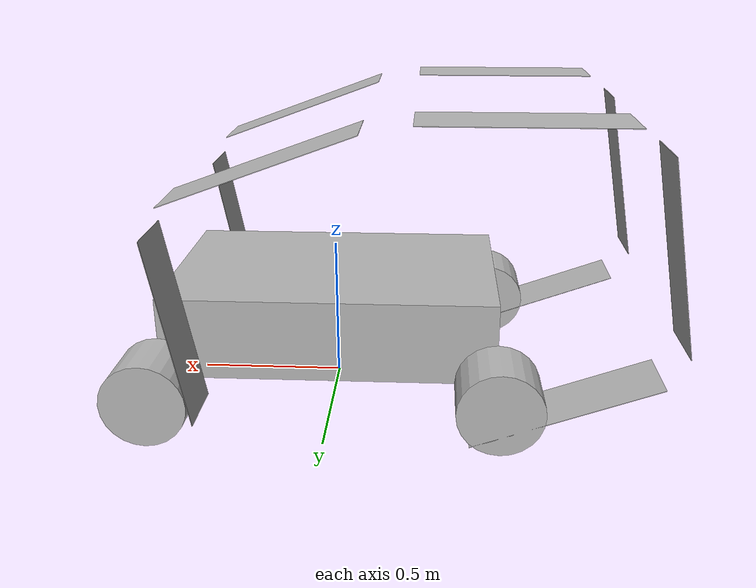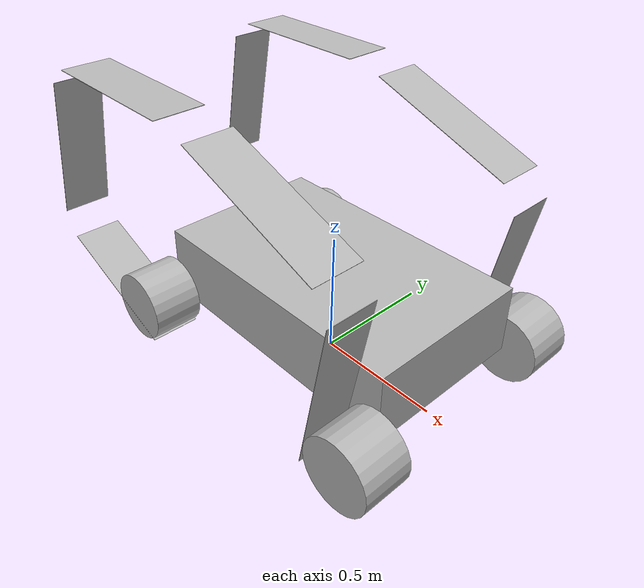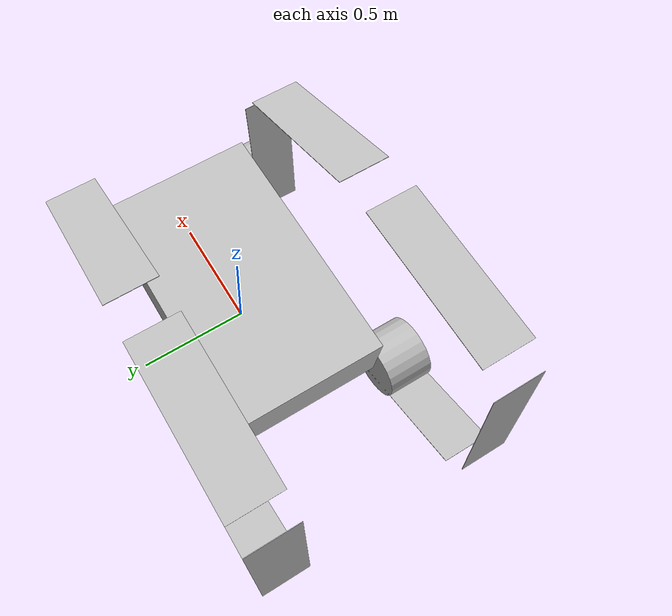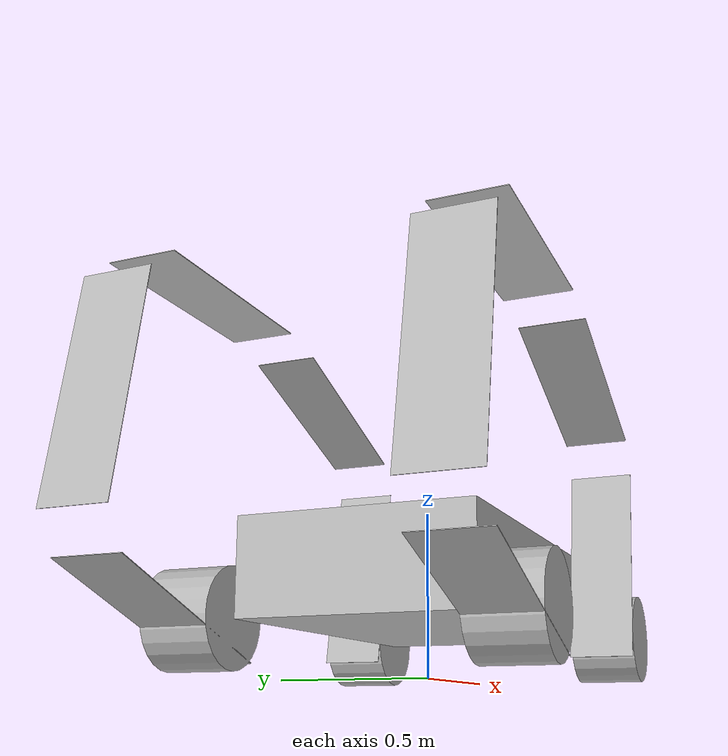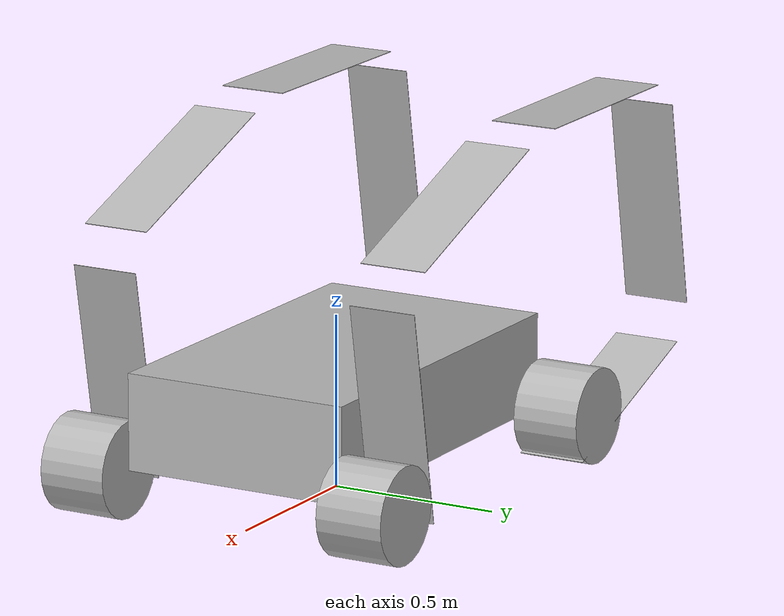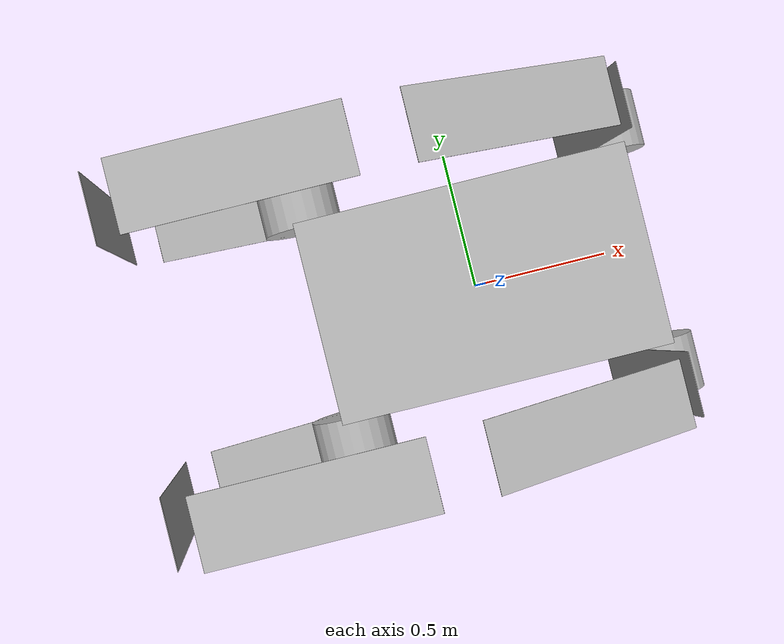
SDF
<sdf version="1.4">
  <model name="track_creator">
    <link name="base_link">
      <self_collide>0</self_collide>
      <pose>0 0 0.28 0 0 0</pose>
      <collision name="base_link_collision">
        <geometry>
          <box>
            <size>1.12 0.68 0.28</size>
          </box>
        </geometry>
      </collision>
      <visual name="base_link_visual">
        <geometry>
          <box>
            <size>1.12 0.68 0.28</size>
          </box>
        </geometry>
      </visual>
    </link>
    <link name="drum1">
      <self_collide>1</self_collide>
      <pose>0.56 0.44 0.142 1.57079632679 0 0</pose>
      <collision name="drum1_collision">
        <geometry>
          <cylinder>
            <radius>0.14</radius>
            <length>0.2</length>
          </cylinder>
        </geometry>
      </collision>
      <visual name="drum1_visual">
        <geometry>
          <cylinder>
            <radius>0.14</radius>
            <length>0.2</length>
          </cylinder>
        </geometry>
      </visual>
    </link>
    <joint name="drum_joint1" type="revolute">
      <pose>0 0 0 0 0 0</pose>
      <parent>base_link</parent>
      <child>drum1</child>
      <axis>
        <xyz>0 1 0</xyz>
      </axis>
    </joint>
    <link name="drum2">
      <self_collide>1</self_collide>
      <pose>0.56 -0.44 0.142 1.57079632679 0 0</pose>
      <collision name="drum2_collision">
        <geometry>
          <cylinder>
            <radius>0.14</radius>
            <length>0.2</length>
          </cylinder>
        </geometry>
      </collision>
      <visual name="drum2_visual">
        <geometry>
          <cylinder>
            <radius>0.14</radius>
            <length>0.2</length>
          </cylinder>
        </geometry>
      </visual>
    </link>
    <joint name="drum_joint2" type="revolute">
      <pose>0 0 0 0 0 0</pose>
      <parent>base_link</parent>
      <child>drum2</child>
      <axis>
        <xyz>0 1 0</xyz>
      </axis>
    </joint>
    <link name="drum3">
      <self_collide>1</self_collide>
      <pose>-0.56 0.44 0.142 1.57079632679 0 0</pose>
      <collision name="drum3_collision">
        <geometry>
          <cylinder>
            <radius>0.14</radius>
            <length>0.2</length>
          </cylinder>
        </geometry>
      </collision>
      <visual name="drum3_visual">
        <geometry>
          <cylinder>
            <radius>0.14</radius>
            <length>0.2</length>
          </cylinder>
        </geometry>
      </visual>
    </link>
    <joint name="drum_joint3" type="revolute">
      <pose>0 0 0 0 0 0</pose>
      <parent>base_link</parent>
      <child>drum3</child>
      <axis>
        <xyz>0 1 0</xyz>
      </axis>
    </joint>
    <link name="drum4">
      <self_collide>1</self_collide>
      <pose>-0.56 -0.44 0.142 1.57079632679 0 0</pose>
      <collision name="drum4_collision">
        <geometry>
          <cylinder>
            <radius>0.14</radius>
            <length>0.2</length>
          </cylinder>
        </geometry>
      </collision>
      <visual name="drum4_visual">
        <geometry>
          <cylinder>
            <radius>0.14</radius>
            <length>0.2</length>
          </cylinder>
        </geometry>
      </visual>
    </link>
    <joint name="drum_joint4" type="revolute">
      <pose>0 0 0 0 0 0</pose>
      <parent>base_link</parent>
      <child>drum4</child>
      <axis>
        <xyz>0 1 0</xyz>
      </axis>
    </joint>
    <link name="right_pad1">
      <self_collide>1</self_collide>
      <pose>0.459653108251 0.44 0.385626993558 0 -1.39353393257 0</pose>
      <collision name="right_pad1_collision">
        <geometry>
          <box>
            <size>0.6252 0.2 0.002</size>
          </box>
        </geometry>
      </collision>
      <visual name="right_pad1_visual">
        <geometry>
          <box>
            <size>0.6252 0.2 0.002</size>
          </box>
        </geometry>
      </visual>
    </link>
    <joint name="right_pad_joint1" type="revolute">
      <pose>-0.39075 0 0 0 0 0</pose>
      <parent>right_pad1</parent>
      <child>right_pad2</child>
      <axis>
        <xyz>0 1 0</xyz>
      </axis>
    </joint>
    <link name="right_pad2">
      <self_collide>1</self_collide>
      <pose>0.162106348692 0.44 0.905900796448 0 -2.78706786513 0</pose>
      <collision name="right_pad2_collision">
        <geometry>
          <box>
            <size>0.6252 0.2 0.002</size>
          </box>
        </geometry>
      </collision>
      <visual name="right_pad2_visual">
        <geometry>
          <box>
            <size>0.6252 0.2 0.002</size>
          </box>
        </geometry>
      </visual>
    </link>
    <joint name="right_pad_joint2" type="revolute">
      <pose>-0.39075 0 0 0 0 0</pose>
      <parent>right_pad2</parent>
      <child>right_pad3</child>
      <axis>
        <xyz>0 1 0</xyz>
      </axis>
    </joint>
    <link name="right_pad3">
      <self_collide>1</self_collide>
      <pose>-0.595093519118 0.44 1.04154760578 0 3.14159265359 0</pose>
      <collision name="right_pad3_collision">
        <geometry>
          <box>
            <size>0.6252 0.2 0.002</size>
          </box>
        </geometry>
      </collision>
      <visual name="right_pad3_visual">
        <geometry>
          <box>
            <size>0.6252 0.2 0.002</size>
          </box>
        </geometry>
      </visual>
    </link>
    <joint name="right_pad_joint3" type="revolute">
      <pose>-0.39075 0 0 0 0 0</pose>
      <parent>right_pad3</parent>
      <child>right_pad4</child>
      <axis>
        <xyz>0 1 0</xyz>
      </axis>
    </joint>
    <link name="right_pad4">
      <self_collide>1</self_collide>
      <pose>-1.05474662737 0.44 0.656920612223 0 1.74805872102 0</pose>
      <collision name="right_pad4_collision">
        <geometry>
          <box>
            <size>0.6252 0.2 0.002</size>
          </box>
        </geometry>
      </collision>
      <visual name="right_pad4_visual">
        <geometry>
          <box>
            <size>0.6252 0.2 0.002</size>
          </box>
        </geometry>
      </visual>
    </link>
    <joint name="right_pad_joint4" type="revolute">
      <pose>-0.39075 0 0 0 0 0</pose>
      <parent>right_pad4</parent>
      <child>right_pad5</child>
      <axis>
        <xyz>0 1 0</xyz>
      </axis>
    </joint>
    <link name="right_pad5">
      <self_collide>1</self_collide>
      <pose>-0.75719986781 0.44 0.136646809333 0 0.35452478846 0</pose>
      <collision name="right_pad5_collision">
        <geometry>
          <box>
            <size>0.6252 0.2 0.002</size>
          </box>
        </geometry>
      </collision>
      <visual name="right_pad5_visual">
        <geometry>
          <box>
            <size>0.6252 0.2 0.002</size>
          </box>
        </geometry>
      </visual>
    </link>
    <joint name="right_pad_joint5" type="revolute">
      <pose>-0.39075 0 0 0 0 0</pose>
      <parent>right_pad5</parent>
      <child>right_pad1</child>
      <axis>
        <xyz>0 1 0</xyz>
      </axis>
    </joint>
    <link name="left_pad1">
      <self_collide>1</self_collide>
      <pose>0.459653108251 -0.44 0.385626993558 0 -1.39353393257 0</pose>
      <collision name="left_pad1_collision">
        <geometry>
          <box>
            <size>0.6252 0.2 0.002</size>
          </box>
        </geometry>
      </collision>
      <visual name="left_pad1_visual">
        <geometry>
          <box>
            <size>0.6252 0.2 0.002</size>
          </box>
        </geometry>
      </visual>
    </link>
    <joint name="left_pad_joint1" type="revolute">
      <pose>-0.39075 0 0 0 0 0</pose>
      <parent>left_pad1</parent>
      <child>left_pad2</child>
      <axis>
        <xyz>0 1 0</xyz>
      </axis>
    </joint>
    <link name="left_pad2">
      <self_collide>1</self_collide>
      <pose>0.162106348692 -0.44 0.905900796448 0 -2.78706786513 0</pose>
      <collision name="left_pad2_collision">
        <geometry>
          <box>
            <size>0.6252 0.2 0.002</size>
          </box>
        </geometry>
      </collision>
      <visual name="left_pad2_visual">
        <geometry>
          <box>
            <size>0.6252 0.2 0.002</size>
          </box>
        </geometry>
      </visual>
    </link>
    <joint name="left_pad_joint2" type="revolute">
      <pose>-0.39075 0 0 0 0 0</pose>
      <parent>left_pad2</parent>
      <child>left_pad3</child>
      <axis>
        <xyz>0 1 0</xyz>
      </axis>
    </joint>
    <link name="left_pad3">
      <self_collide>1</self_collide>
      <pose>-0.595093519118 -0.44 1.04154760578 0 3.14159265359 0</pose>
      <collision name="left_pad3_collision">
        <geometry>
          <box>
            <size>0.6252 0.2 0.002</size>
          </box>
        </geometry>
      </collision>
      <visual name="left_pad3_visual">
        <geometry>
          <box>
            <size>0.6252 0.2 0.002</size>
          </box>
        </geometry>
      </visual>
    </link>
    <joint name="left_pad_joint3" type="revolute">
      <pose>-0.39075 0 0 0 0 0</pose>
      <parent>left_pad3</parent>
      <child>left_pad4</child>
      <axis>
        <xyz>0 1 0</xyz>
      </axis>
    </joint>
    <link name="left_pad4">
      <self_collide>1</self_collide>
      <pose>-1.05474662737 -0.44 0.656920612223 0 1.74805872102 0</pose>
      <collision name="left_pad4_collision">
        <geometry>
          <box>
            <size>0.6252 0.2 0.002</size>
          </box>
        </geometry>
      </collision>
      <visual name="left_pad4_visual">
        <geometry>
          <box>
            <size>0.6252 0.2 0.002</size>
          </box>
        </geometry>
      </visual>
    </link>
    <joint name="left_pad_joint4" type="revolute">
      <pose>-0.39075 0 0 0 0 0</pose>
      <parent>left_pad4</parent>
      <child>left_pad5</child>
      <axis>
        <xyz>0 1 0</xyz>
      </axis>
    </joint>
    <link name="left_pad5">
      <self_collide>1</self_collide>
      <pose>-0.75719986781 -0.44 0.136646809333 0 0.35452478846 0</pose>
      <collision name="left_pad5_collision">
        <geometry>
          <box>
            <size>0.6252 0.2 0.002</size>
          </box>
        </geometry>
      </collision>
      <visual name="left_pad5_visual">
        <geometry>
          <box>
            <size>0.6252 0.2 0.002</size>
          </box>
        </geometry>
      </visual>
    </link>
    <joint name="left_pad_joint5" type="revolute">
      <pose>-0.39075 0 0 0 0 0</pose>
      <parent>left_pad5</parent>
      <child>left_pad1</child>
      <axis>
        <xyz>0 1 0</xyz>
      </axis>
    </joint>
  </model>
</sdf>
